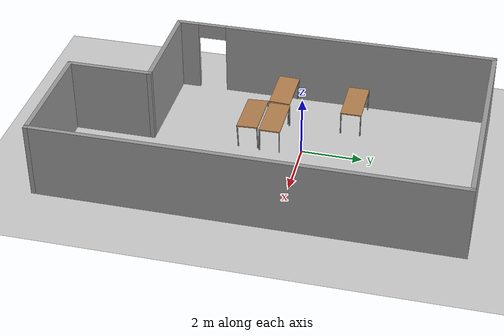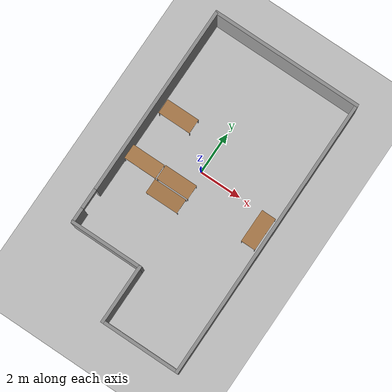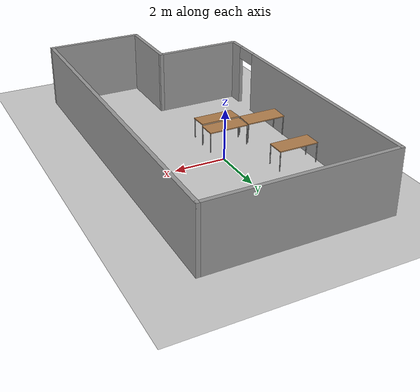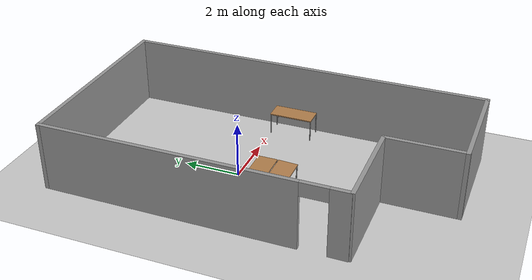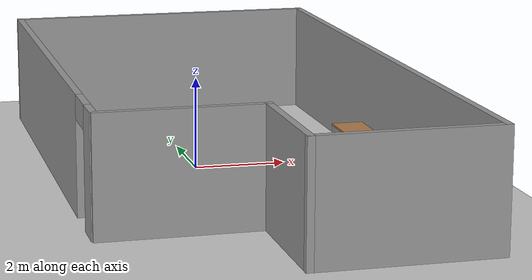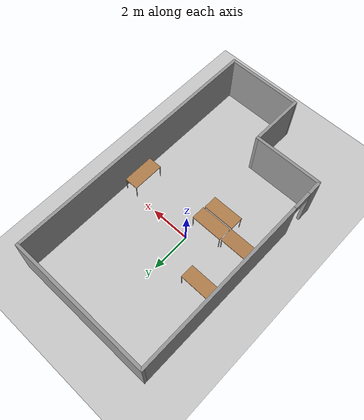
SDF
<sdf version="1.6">
 <world name="Clf Furnished">
  <model name="ground_plane">
   <static>1</static>
   <link name="link">
    <collision name="collision">
     <geometry><plane><normal>0 0 1</normal><size>100 100</size></plane></geometry>
     <surface><friction><ode><mu>100</mu><mu2>50</mu2></ode></friction></surface>
    </collision>
    <visual name="visual">
     <cast_shadows>0</cast_shadows>
     <geometry><plane><normal>0 0 1</normal><size>100 100</size></plane></geometry>
     <material>
      <script><uri>file://media/materials/scripts/gazebo.material</uri><name>Gazebo/Grey</name></script>
     </material>
    </visual>
   </link>
  </model>
  <model name="CLF_0">
   <pose>0.46218 -0.965731 0 0 -0 0</pose>
   <link name="Wall_0">
    <pose>-3.547 1.394 0 0 0 -1.5708</pose>
    <visual name="Wall_0_Visual_0">
     <pose>-0.827428 0 1.25 0 -0 0</pose>
     <geometry><box><size>9.14514 0.15 2.5</size></box></geometry>
     <material>
      <script><uri>file://media/materials/scripts/gazebo.material</uri><name>Gazebo/Grey</name></script>
      <ambient>1 1 1 1</ambient>
     </material>
    </visual>
    <collision name="Wall_0_Collision_0">
     <geometry><box><size>9.14514 0.15 2.5</size></box></geometry>
     <pose>-0.827428 0 1.25 0 -0 0</pose>
    </collision>
    <visual name="Wall_0_Visual_1">
     <pose>5.05257 0 1.25 0 -0 0</pose>
     <geometry><box><size>0.694856 0.15 2.5</size></box></geometry>
     <material>
      <script><uri>file://media/materials/scripts/gazebo.material</uri><name>Gazebo/Grey</name></script>
      <ambient>1 1 1 1</ambient>
     </material>
    </visual>
    <collision name="Wall_0_Collision_1">
     <geometry><box><size>0.694856 0.15 2.5</size></box></geometry>
     <pose>5.05257 0 1.25 0 -0 0</pose>
    </collision>
    <visual name="Wall_0_Visual_2">
     <pose>4.22514 0 2.25 0 -0 0</pose>
     <geometry><box><size>0.96 0.15 0.5</size></box></geometry>
     <material>
      <script><uri>file://media/materials/scripts/gazebo.material</uri><name>Gazebo/Grey</name></script>
      <ambient>1 1 1 1</ambient>
     </material>
    </visual>
    <collision name="Wall_0_Collision_2">
     <geometry><box><size>0.96 0.15 0.5</size></box></geometry>
     <pose>4.22514 0 2.25 0 -0 0</pose>
    </collision>
   </link>
   <link name="Wall_10">
    <collision name="Wall_10_Collision">
     <geometry><box><size>3.5 0.15 2.5</size></box></geometry>
     <pose>0 0 1.25 0 -0 0</pose>
    </collision>
    <visual name="Wall_10_Visual">
     <pose>0 0 1.25 0 -0 0</pose>
     <geometry><box><size>3.5 0.15 2.5</size></box></geometry>
     <material>
      <script><uri>file://media/materials/scripts/gazebo.material</uri><name>Gazebo/Grey</name></script>
      <ambient>1 1 1 1</ambient>
     </material>
    </visual>
    <pose>-1.848 -4.005 0 0 -0 3.14159</pose>
   </link>
   <link name="Wall_2">
    <collision name="Wall_2_Collision">
     <geometry><box><size>7.244 0.15 2.5</size></box></geometry>
     <pose>0 0 1.25 0 -0 0</pose>
    </collision>
    <visual name="Wall_2_Visual">
     <pose>0 0 1.25 0 -0 0</pose>
     <geometry><box><size>7.244 0.15 2.5</size></box></geometry>
     <material>
      <script><uri>file://media/materials/scripts/gazebo.material</uri><name>Gazebo/Grey</name></script>
      <ambient>1 1 1 1</ambient>
     </material>
    </visual>
    <pose>0 6.719 0 0 -0 0</pose>
   </link>
   <link name="Wall_4">
    <collision name="Wall_4_Collision">
     <geometry><box><size>13.588 0.15 2.5</size></box></geometry>
     <pose>0 0 1.25 0 -0 0</pose>
    </collision>
    <visual name="Wall_4_Visual">
     <pose>0 0 1.25 0 -0 0</pose>
     <geometry><box><size>13.588 0.15 2.5</size></box></geometry>
     <material>
      <script><uri>file://media/materials/scripts/gazebo.material</uri><name>Gazebo/Grey</name></script>
      <ambient>1 1 1 1</ambient>
     </material>
    </visual>
    <pose>3.547 0 0 0 0 -1.5708</pose>
   </link>
   <link name="Wall_6">
    <collision name="Wall_6_Collision">
     <geometry><box><size>3.87 0.15 2.5</size></box></geometry>
     <pose>0 0 1.25 0 -0 0</pose>
    </collision>
    <visual name="Wall_6_Visual">
     <pose>0 0 1.25 0 -0 0</pose>
     <geometry><box><size>3.87 0.15 2.5</size></box></geometry>
     <material>
      <script><uri>file://media/materials/scripts/gazebo.material</uri><name>Gazebo/Grey</name></script>
      <ambient>1 1 1 1</ambient>
     </material>
    </visual>
    <pose>1.687 -6.719 0 0 -0 3.14159</pose>
   </link>
   <link name="Wall_8">
    <collision name="Wall_8_Collision">
     <geometry><box><size>2.864 0.15 2.5</size></box></geometry>
     <pose>0 0 1.25 0 -0 0</pose>
    </collision>
    <visual name="Wall_8_Visual">
     <pose>0 0 1.25 0 -0 0</pose>
     <geometry><box><size>2.864 0.15 2.5</size></box></geometry>
     <material>
      <script><uri>file://media/materials/scripts/gazebo.material</uri><name>Gazebo/Grey</name></script>
      <ambient>1 1 1 1</ambient>
     </material>
    </visual>
    <pose>-0.173 -5.362 0 0 -0 1.5708</pose>
   </link>
   <static>1</static>
  </model>
  <model name="table_mod_0">
   <link name="link">
    <inertial>
     <inertia><ixx>1</ixx><ixy>0</ixy><ixz>0</ixz><iyy>1</iyy><iyz>0</iyz><izz>1</izz></inertia>
     <mass>1</mass>
    </inertial>
    <visual name="visual1">
     <pose>0 0 0.8 0 -0 0</pose>
     <geometry><box><size>1.6 0.7 0.04</size></box></geometry>
     <material>
      <script><uri>file://media/materials/scripts/gazebo.material</uri><name>Gazebo/Wood</name></script>
      <ambient>1 1 1 1</ambient>
      <diffuse>1 1 1 1</diffuse>
      <specular>0.2 0.2 0.2 1</specular>
      <emissive>0 0 0 1</emissive>
     </material>
    </visual>
    <visual name="front_right_leg">
     <pose>0.78 -0.33 0.4 0 -0 0</pose>
     <geometry><cylinder><radius>0.02</radius><length>0.8</length></cylinder></geometry>
     <material>
      <script><uri>file://media/materials/scripts/gazebo.material</uri><name>Gazebo/Grey</name></script>
      <ambient>0.3 0.3 0.3 1</ambient>
      <diffuse>0.7 0.7 0.7 1</diffuse>
      <specular>0.01 0.01 0.01 1</specular>
      <emissive>0 0 0 1</emissive>
     </material>
    </visual>
    <visual name="front_left_leg">
     <pose>0.78 0.33 0.4 0 -0 0</pose>
     <geometry><cylinder><radius>0.02</radius><length>0.8</length></cylinder></geometry>
     <material>
      <script><uri>file://media/materials/scripts/gazebo.material</uri><name>Gazebo/Grey</name></script>
      <ambient>0.3 0.3 0.3 1</ambient>
      <diffuse>0.7 0.7 0.7 1</diffuse>
      <specular>0.01 0.01 0.01 1</specular>
      <emissive>0 0 0 1</emissive>
     </material>
    </visual>
    <visual name="back_left_leg">
     <pose>-0.78 0.33 0.4 0 -0 0</pose>
     <geometry><cylinder><radius>0.02</radius><length>0.8</length></cylinder></geometry>
     <material>
      <script><uri>file://media/materials/scripts/gazebo.material</uri><name>Gazebo/Grey</name></script>
      <ambient>0.3 0.3 0.3 1</ambient>
      <diffuse>0.7 0.7 0.7 1</diffuse>
      <specular>0.01 0.01 0.01 1</specular>
      <emissive>0 0 0 1</emissive>
     </material>
    </visual>
    <visual name="back_right_leg">
     <pose>-0.78 -0.33 0.4 0 -0 0</pose>
     <geometry><cylinder><radius>0.02</radius><length>0.8</length></cylinder></geometry>
     <material>
      <script><uri>file://media/materials/scripts/gazebo.material</uri><name>Gazebo/Grey</name></script>
      <ambient>0.3 0.3 0.3 1</ambient>
      <diffuse>0.7 0.7 0.7 1</diffuse>
      <specular>0.01 0.01 0.01 1</specular>
      <emissive>0 0 0 1</emissive>
     </material>
    </visual>
    <collision name="surface">
     <pose>0 0 0.8 0 -0 0</pose>
     <geometry><box><size>1.6 0.7 0.03</size></box></geometry>
     <surface>
      <friction>
       <ode><mu>0.6</mu><mu2>0.6</mu2><fdir1>0 0 0</fdir1><slip1>0</slip1><slip2>0</slip2></ode>
       <torsional>
        <coefficient>1</coefficient>
        <patch_radius>0</patch_radius>
        <surface_radius>0</surface_radius>
        <use_patch_radius>1</use_patch_radius>
        <ode><slip>0</slip></ode>
       </torsional>
      </friction>
      <bounce><restitution_coefficient>0</restitution_coefficient><threshold>1e+06</threshold></bounce>
      <contact>
       <collide_without_contact>0</collide_without_contact>
       <collide_without_contact_bitmask>1</collide_without_contact_bitmask>
       <collide_bitmask>1</collide_bitmask>
       <ode>
        <soft_cfm>0</soft_cfm>
        <soft_erp>0.2</soft_erp>
        <kp>1e+13</kp>
        <kd>1</kd>
        <max_vel>0.01</max_vel>
        <min_depth>0</min_depth>
       </ode>
       <bullet>
        <split_impulse>1</split_impulse>
        <split_impulse_penetration_threshold>-0.01</split_impulse_penetration_threshold>
        <soft_cfm>0</soft_cfm>
        <soft_erp>0.2</soft_erp>
        <kp>1e+13</kp>
        <kd>1</kd>
       </bullet>
      </contact>
     </surface>
    </collision>
    <collision name="front_left_leg">
     <pose>0.78 0.33 0.4 0 -0 0</pose>
     <geometry><cylinder><radius>0.02</radius><length>0.8</length></cylinder></geometry>
     <surface>
      <friction>
       <ode><mu>1</mu><mu2>1</mu2><fdir1>0 0 0</fdir1><slip1>0</slip1><slip2>0</slip2></ode>
       <torsional>
        <coefficient>1</coefficient>
        <patch_radius>0</patch_radius>
        <surface_radius>0</surface_radius>
        <use_patch_radius>1</use_patch_radius>
        <ode><slip>0</slip></ode>
       </torsional>
      </friction>
      <bounce><restitution_coefficient>0</restitution_coefficient><threshold>1e+06</threshold></bounce>
      <contact>
       <collide_without_contact>0</collide_without_contact>
       <collide_without_contact_bitmask>1</collide_without_contact_bitmask>
       <collide_bitmask>1</collide_bitmask>
       <ode>
        <soft_cfm>0</soft_cfm>
        <soft_erp>0.2</soft_erp>
        <kp>1e+13</kp>
        <kd>1</kd>
        <max_vel>0.01</max_vel>
        <min_depth>0</min_depth>
       </ode>
       <bullet>
        <split_impulse>1</split_impulse>
        <split_impulse_penetration_threshold>-0.01</split_impulse_penetration_threshold>
        <soft_cfm>0</soft_cfm>
        <soft_erp>0.2</soft_erp>
        <kp>1e+13</kp>
        <kd>1</kd>
       </bullet>
      </contact>
     </surface>
    </collision>
    <collision name="front_right_leg">
     <pose>0.78 -0.33 0.4 0 -0 0</pose>
     <geometry><cylinder><radius>0.02</radius><length>0.8</length></cylinder></geometry>
     <surface>
      <friction>
       <ode><mu>1</mu><mu2>1</mu2><fdir1>0 0 0</fdir1><slip1>0</slip1><slip2>0</slip2></ode>
       <torsional>
        <coefficient>1</coefficient>
        <patch_radius>0</patch_radius>
        <surface_radius>0</surface_radius>
        <use_patch_radius>1</use_patch_radius>
        <ode><slip>0</slip></ode>
       </torsional>
      </friction>
      <bounce><restitution_coefficient>0</restitution_coefficient><threshold>1e+06</threshold></bounce>
      <contact>
       <collide_without_contact>0</collide_without_contact>
       <collide_without_contact_bitmask>1</collide_without_contact_bitmask>
       <collide_bitmask>1</collide_bitmask>
       <ode>
        <soft_cfm>0</soft_cfm>
        <soft_erp>0.2</soft_erp>
        <kp>1e+13</kp>
        <kd>1</kd>
        <max_vel>0.01</max_vel>
        <min_depth>0</min_depth>
       </ode>
       <bullet>
        <split_impulse>1</split_impulse>
        <split_impulse_penetration_threshold>-0.01</split_impulse_penetration_threshold>
        <soft_cfm>0</soft_cfm>
        <soft_erp>0.2</soft_erp>
        <kp>1e+13</kp>
        <kd>1</kd>
       </bullet>
      </contact>
     </surface>
    </collision>
    <collision name="back_right_leg">
     <pose>-0.78 -0.33 0.4 0 -0 0</pose>
     <geometry><cylinder><radius>0.02</radius><length>0.8</length></cylinder></geometry>
     <surface>
      <friction>
       <ode><mu>1</mu><mu2>1</mu2><fdir1>0 0 0</fdir1><slip1>0</slip1><slip2>0</slip2></ode>
       <torsional>
        <coefficient>1</coefficient>
        <patch_radius>0</patch_radius>
        <surface_radius>0</surface_radius>
        <use_patch_radius>1</use_patch_radius>
        <ode><slip>0</slip></ode>
       </torsional>
      </friction>
      <bounce><restitution_coefficient>0</restitution_coefficient><threshold>1e+06</threshold></bounce>
      <contact>
       <collide_without_contact>0</collide_without_contact>
       <collide_without_contact_bitmask>1</collide_without_contact_bitmask>
       <collide_bitmask>1</collide_bitmask>
       <ode>
        <soft_cfm>0</soft_cfm>
        <soft_erp>0.2</soft_erp>
        <kp>1e+13</kp>
        <kd>1</kd>
        <max_vel>0.01</max_vel>
        <min_depth>0</min_depth>
       </ode>
       <bullet>
        <split_impulse>1</split_impulse>
        <split_impulse_penetration_threshold>-0.01</split_impulse_penetration_threshold>
        <soft_cfm>0</soft_cfm>
        <soft_erp>0.2</soft_erp>
        <kp>1e+13</kp>
        <kd>1</kd>
       </bullet>
      </contact>
     </surface>
    </collision>
    <collision name="back_left_leg">
     <pose>-0.78 0.33 0.4 0 -0 0</pose>
     <geometry><cylinder><radius>0.02</radius><length>0.8</length></cylinder></geometry>
     <surface>
      <friction>
       <ode><mu>1</mu><mu2>1</mu2><fdir1>0 0 0</fdir1><slip1>0</slip1><slip2>0</slip2></ode>
       <torsional>
        <coefficient>1</coefficient>
        <patch_radius>0</patch_radius>
        <surface_radius>0</surface_radius>
        <use_patch_radius>1</use_patch_radius>
        <ode><slip>0</slip></ode>
       </torsional>
      </friction>
      <bounce><restitution_coefficient>0</restitution_coefficient><threshold>1e+06</threshold></bounce>
      <contact>
       <collide_without_contact>0</collide_without_contact>
       <collide_without_contact_bitmask>1</collide_without_contact_bitmask>
       <collide_bitmask>1</collide_bitmask>
       <ode>
        <soft_cfm>0</soft_cfm>
        <soft_erp>0.2</soft_erp>
        <kp>1e+13</kp>
        <kd>1</kd>
        <max_vel>0.01</max_vel>
        <min_depth>0</min_depth>
       </ode>
       <bullet>
        <split_impulse>1</split_impulse>
        <split_impulse_penetration_threshold>-0.01</split_impulse_penetration_threshold>
        <soft_cfm>0</soft_cfm>
        <soft_erp>0.2</soft_erp>
        <kp>1e+13</kp>
        <kd>1</kd>
       </bullet>
      </contact>
     </surface>
    </collision>
   </link>
   <static>0</static>
   <pose>-0.609391 -1.75257 0.015325 0.043779 2.2e-05 0.001206</pose>
  </model>
  <model name="table_mod_clone">
   <link name="link">
    <inertial>
     <inertia><ixx>1</ixx><ixy>0</ixy><ixz>0</ixz><iyy>1</iyy><iyz>0</iyz><izz>1</izz></inertia>
     <mass>1</mass>
    </inertial>
    <visual name="visual1">
     <pose>0 0 0.8 0 -0 0</pose>
     <geometry><box><size>1.6 0.7 0.04</size></box></geometry>
     <material>
      <script><uri>file://media/materials/scripts/gazebo.material</uri><name>Gazebo/Wood</name></script>
      <ambient>1 1 1 1</ambient>
      <diffuse>1 1 1 1</diffuse>
      <specular>0.2 0.2 0.2 1</specular>
      <emissive>0 0 0 1</emissive>
     </material>
    </visual>
    <visual name="front_right_leg">
     <pose>0.78 -0.33 0.4 0 -0 0</pose>
     <geometry><cylinder><radius>0.02</radius><length>0.8</length></cylinder></geometry>
     <material>
      <script><uri>file://media/materials/scripts/gazebo.material</uri><name>Gazebo/Grey</name></script>
      <ambient>0.3 0.3 0.3 1</ambient>
      <diffuse>0.7 0.7 0.7 1</diffuse>
      <specular>0.01 0.01 0.01 1</specular>
      <emissive>0 0 0 1</emissive>
     </material>
    </visual>
    <visual name="front_left_leg">
     <pose>0.78 0.33 0.4 0 -0 0</pose>
     <geometry><cylinder><radius>0.02</radius><length>0.8</length></cylinder></geometry>
     <material>
      <script><uri>file://media/materials/scripts/gazebo.material</uri><name>Gazebo/Grey</name></script>
      <ambient>0.3 0.3 0.3 1</ambient>
      <diffuse>0.7 0.7 0.7 1</diffuse>
      <specular>0.01 0.01 0.01 1</specular>
      <emissive>0 0 0 1</emissive>
     </material>
    </visual>
    <visual name="back_left_leg">
     <pose>-0.78 0.33 0.4 0 -0 0</pose>
     <geometry><cylinder><radius>0.02</radius><length>0.8</length></cylinder></geometry>
     <material>
      <script><uri>file://media/materials/scripts/gazebo.material</uri><name>Gazebo/Grey</name></script>
      <ambient>0.3 0.3 0.3 1</ambient>
      <diffuse>0.7 0.7 0.7 1</diffuse>
      <specular>0.01 0.01 0.01 1</specular>
      <emissive>0 0 0 1</emissive>
     </material>
    </visual>
    <visual name="back_right_leg">
     <pose>-0.78 -0.33 0.4 0 -0 0</pose>
     <geometry><cylinder><radius>0.02</radius><length>0.8</length></cylinder></geometry>
     <material>
      <script><uri>file://media/materials/scripts/gazebo.material</uri><name>Gazebo/Grey</name></script>
      <ambient>0.3 0.3 0.3 1</ambient>
      <diffuse>0.7 0.7 0.7 1</diffuse>
      <specular>0.01 0.01 0.01 1</specular>
      <emissive>0 0 0 1</emissive>
     </material>
    </visual>
    <collision name="surface">
     <pose>0 0 0.8 0 -0 0</pose>
     <geometry><box><size>1.6 0.7 0.03</size></box></geometry>
     <surface>
      <friction>
       <ode><mu>0.6</mu><mu2>0.6</mu2><fdir1>0 0 0</fdir1><slip1>0</slip1><slip2>0</slip2></ode>
       <torsional>
        <coefficient>1</coefficient>
        <patch_radius>0</patch_radius>
        <surface_radius>0</surface_radius>
        <use_patch_radius>1</use_patch_radius>
        <ode><slip>0</slip></ode>
       </torsional>
      </friction>
      <bounce><restitution_coefficient>0</restitution_coefficient><threshold>1e+06</threshold></bounce>
      <contact>
       <collide_without_contact>0</collide_without_contact>
       <collide_without_contact_bitmask>1</collide_without_contact_bitmask>
       <collide_bitmask>1</collide_bitmask>
       <ode>
        <soft_cfm>0</soft_cfm>
        <soft_erp>0.2</soft_erp>
        <kp>1e+13</kp>
        <kd>1</kd>
        <max_vel>0.01</max_vel>
        <min_depth>0</min_depth>
       </ode>
       <bullet>
        <split_impulse>1</split_impulse>
        <split_impulse_penetration_threshold>-0.01</split_impulse_penetration_threshold>
        <soft_cfm>0</soft_cfm>
        <soft_erp>0.2</soft_erp>
        <kp>1e+13</kp>
        <kd>1</kd>
       </bullet>
      </contact>
     </surface>
    </collision>
    <collision name="front_left_leg">
     <pose>0.78 0.33 0.4 0 -0 0</pose>
     <geometry><cylinder><radius>0.02</radius><length>0.8</length></cylinder></geometry>
     <surface>
      <friction>
       <ode><mu>1</mu><mu2>1</mu2><fdir1>0 0 0</fdir1><slip1>0</slip1><slip2>0</slip2></ode>
       <torsional>
        <coefficient>1</coefficient>
        <patch_radius>0</patch_radius>
        <surface_radius>0</surface_radius>
        <use_patch_radius>1</use_patch_radius>
        <ode><slip>0</slip></ode>
       </torsional>
      </friction>
      <bounce><restitution_coefficient>0</restitution_coefficient><threshold>1e+06</threshold></bounce>
      <contact>
       <collide_without_contact>0</collide_without_contact>
       <collide_without_contact_bitmask>1</collide_without_contact_bitmask>
       <collide_bitmask>1</collide_bitmask>
       <ode>
        <soft_cfm>0</soft_cfm>
        <soft_erp>0.2</soft_erp>
        <kp>1e+13</kp>
        <kd>1</kd>
        <max_vel>0.01</max_vel>
        <min_depth>0</min_depth>
       </ode>
       <bullet>
        <split_impulse>1</split_impulse>
        <split_impulse_penetration_threshold>-0.01</split_impulse_penetration_threshold>
        <soft_cfm>0</soft_cfm>
        <soft_erp>0.2</soft_erp>
        <kp>1e+13</kp>
        <kd>1</kd>
       </bullet>
      </contact>
     </surface>
    </collision>
    <collision name="front_right_leg">
     <pose>0.78 -0.33 0.4 0 -0 0</pose>
     <geometry><cylinder><radius>0.02</radius><length>0.8</length></cylinder></geometry>
     <surface>
      <friction>
       <ode><mu>1</mu><mu2>1</mu2><fdir1>0 0 0</fdir1><slip1>0</slip1><slip2>0</slip2></ode>
       <torsional>
        <coefficient>1</coefficient>
        <patch_radius>0</patch_radius>
        <surface_radius>0</surface_radius>
        <use_patch_radius>1</use_patch_radius>
        <ode><slip>0</slip></ode>
       </torsional>
      </friction>
      <bounce><restitution_coefficient>0</restitution_coefficient><threshold>1e+06</threshold></bounce>
      <contact>
       <collide_without_contact>0</collide_without_contact>
       <collide_without_contact_bitmask>1</collide_without_contact_bitmask>
       <collide_bitmask>1</collide_bitmask>
       <ode>
        <soft_cfm>0</soft_cfm>
        <soft_erp>0.2</soft_erp>
        <kp>1e+13</kp>
        <kd>1</kd>
        <max_vel>0.01</max_vel>
        <min_depth>0</min_depth>
       </ode>
       <bullet>
        <split_impulse>1</split_impulse>
        <split_impulse_penetration_threshold>-0.01</split_impulse_penetration_threshold>
        <soft_cfm>0</soft_cfm>
        <soft_erp>0.2</soft_erp>
        <kp>1e+13</kp>
        <kd>1</kd>
       </bullet>
      </contact>
     </surface>
    </collision>
    <collision name="back_right_leg">
     <pose>-0.78 -0.33 0.4 0 -0 0</pose>
     <geometry><cylinder><radius>0.02</radius><length>0.8</length></cylinder></geometry>
     <surface>
      <friction>
       <ode><mu>1</mu><mu2>1</mu2><fdir1>0 0 0</fdir1><slip1>0</slip1><slip2>0</slip2></ode>
       <torsional>
        <coefficient>1</coefficient>
        <patch_radius>0</patch_radius>
        <surface_radius>0</surface_radius>
        <use_patch_radius>1</use_patch_radius>
        <ode><slip>0</slip></ode>
       </torsional>
      </friction>
      <bounce><restitution_coefficient>0</restitution_coefficient><threshold>1e+06</threshold></bounce>
      <contact>
       <collide_without_contact>0</collide_without_contact>
       <collide_without_contact_bitmask>1</collide_without_contact_bitmask>
       <collide_bitmask>1</collide_bitmask>
       <ode>
        <soft_cfm>0</soft_cfm>
        <soft_erp>0.2</soft_erp>
        <kp>1e+13</kp>
        <kd>1</kd>
        <max_vel>0.01</max_vel>
        <min_depth>0</min_depth>
       </ode>
       <bullet>
        <split_impulse>1</split_impulse>
        <split_impulse_penetration_threshold>-0.01</split_impulse_penetration_threshold>
        <soft_cfm>0</soft_cfm>
        <soft_erp>0.2</soft_erp>
        <kp>1e+13</kp>
        <kd>1</kd>
       </bullet>
      </contact>
     </surface>
    </collision>
    <collision name="back_left_leg">
     <pose>-0.78 0.33 0.4 0 -0 0</pose>
     <geometry><cylinder><radius>0.02</radius><length>0.8</length></cylinder></geometry>
     <surface>
      <friction>
       <ode><mu>1</mu><mu2>1</mu2><fdir1>0 0 0</fdir1><slip1>0</slip1><slip2>0</slip2></ode>
       <torsional>
        <coefficient>1</coefficient>
        <patch_radius>0</patch_radius>
        <surface_radius>0</surface_radius>
        <use_patch_radius>1</use_patch_radius>
        <ode><slip>0</slip></ode>
       </torsional>
      </friction>
      <bounce><restitution_coefficient>0</restitution_coefficient><threshold>1e+06</threshold></bounce>
      <contact>
       <collide_without_contact>0</collide_without_contact>
       <collide_without_contact_bitmask>1</collide_without_contact_bitmask>
       <collide_bitmask>1</collide_bitmask>
       <ode>
        <soft_cfm>0</soft_cfm>
        <soft_erp>0.2</soft_erp>
        <kp>1e+13</kp>
        <kd>1</kd>
        <max_vel>0.01</max_vel>
        <min_depth>0</min_depth>
       </ode>
       <bullet>
        <split_impulse>1</split_impulse>
        <split_impulse_penetration_threshold>-0.01</split_impulse_penetration_threshold>
        <soft_cfm>0</soft_cfm>
        <soft_erp>0.2</soft_erp>
        <kp>1e+13</kp>
        <kd>1</kd>
       </bullet>
      </contact>
     </surface>
    </collision>
   </link>
   <static>0</static>
   <pose>-2.20983 -1.10049 0.015295 -0.043718 -0 -3e-06</pose>
  </model>
  <model name="table_mod_clone_0">
   <link name="link">
    <inertial>
     <inertia><ixx>1</ixx><ixy>0</ixy><ixz>0</ixz><iyy>1</iyy><iyz>0</iyz><izz>1</izz></inertia>
     <mass>1</mass>
    </inertial>
    <visual name="visual1">
     <pose>0 0 0.8 0 -0 0</pose>
     <geometry><box><size>1.6 0.7 0.04</size></box></geometry>
     <material>
      <script><uri>file://media/materials/scripts/gazebo.material</uri><name>Gazebo/Wood</name></script>
      <ambient>1 1 1 1</ambient>
      <diffuse>1 1 1 1</diffuse>
      <specular>0.2 0.2 0.2 1</specular>
      <emissive>0 0 0 1</emissive>
     </material>
    </visual>
    <visual name="front_right_leg">
     <pose>0.78 -0.33 0.4 0 -0 0</pose>
     <geometry><cylinder><radius>0.02</radius><length>0.8</length></cylinder></geometry>
     <material>
      <script><uri>file://media/materials/scripts/gazebo.material</uri><name>Gazebo/Grey</name></script>
      <ambient>0.3 0.3 0.3 1</ambient>
      <diffuse>0.7 0.7 0.7 1</diffuse>
      <specular>0.01 0.01 0.01 1</specular>
      <emissive>0 0 0 1</emissive>
     </material>
    </visual>
    <visual name="front_left_leg">
     <pose>0.78 0.33 0.4 0 -0 0</pose>
     <geometry><cylinder><radius>0.02</radius><length>0.8</length></cylinder></geometry>
     <material>
      <script><uri>file://media/materials/scripts/gazebo.material</uri><name>Gazebo/Grey</name></script>
      <ambient>0.3 0.3 0.3 1</ambient>
      <diffuse>0.7 0.7 0.7 1</diffuse>
      <specular>0.01 0.01 0.01 1</specular>
      <emissive>0 0 0 1</emissive>
     </material>
    </visual>
    <visual name="back_left_leg">
     <pose>-0.78 0.33 0.4 0 -0 0</pose>
     <geometry><cylinder><radius>0.02</radius><length>0.8</length></cylinder></geometry>
     <material>
      <script><uri>file://media/materials/scripts/gazebo.material</uri><name>Gazebo/Grey</name></script>
      <ambient>0.3 0.3 0.3 1</ambient>
      <diffuse>0.7 0.7 0.7 1</diffuse>
      <specular>0.01 0.01 0.01 1</specular>
      <emissive>0 0 0 1</emissive>
     </material>
    </visual>
    <visual name="back_right_leg">
     <pose>-0.78 -0.33 0.4 0 -0 0</pose>
     <geometry><cylinder><radius>0.02</radius><length>0.8</length></cylinder></geometry>
     <material>
      <script><uri>file://media/materials/scripts/gazebo.material</uri><name>Gazebo/Grey</name></script>
      <ambient>0.3 0.3 0.3 1</ambient>
      <diffuse>0.7 0.7 0.7 1</diffuse>
      <specular>0.01 0.01 0.01 1</specular>
      <emissive>0 0 0 1</emissive>
     </material>
    </visual>
    <collision name="surface">
     <pose>0 0 0.8 0 -0 0</pose>
     <geometry><box><size>1.6 0.7 0.03</size></box></geometry>
     <surface>
      <friction>
       <ode><mu>0.6</mu><mu2>0.6</mu2><fdir1>0 0 0</fdir1><slip1>0</slip1><slip2>0</slip2></ode>
       <torsional>
        <coefficient>1</coefficient>
        <patch_radius>0</patch_radius>
        <surface_radius>0</surface_radius>
        <use_patch_radius>1</use_patch_radius>
        <ode><slip>0</slip></ode>
       </torsional>
      </friction>
      <bounce><restitution_coefficient>0</restitution_coefficient><threshold>1e+06</threshold></bounce>
      <contact>
       <collide_without_contact>0</collide_without_contact>
       <collide_without_contact_bitmask>1</collide_without_contact_bitmask>
       <collide_bitmask>1</collide_bitmask>
       <ode>
        <soft_cfm>0</soft_cfm>
        <soft_erp>0.2</soft_erp>
        <kp>1e+13</kp>
        <kd>1</kd>
        <max_vel>0.01</max_vel>
        <min_depth>0</min_depth>
       </ode>
       <bullet>
        <split_impulse>1</split_impulse>
        <split_impulse_penetration_threshold>-0.01</split_impulse_penetration_threshold>
        <soft_cfm>0</soft_cfm>
        <soft_erp>0.2</soft_erp>
        <kp>1e+13</kp>
        <kd>1</kd>
       </bullet>
      </contact>
     </surface>
    </collision>
    <collision name="front_left_leg">
     <pose>0.78 0.33 0.4 0 -0 0</pose>
     <geometry><cylinder><radius>0.02</radius><length>0.8</length></cylinder></geometry>
     <surface>
      <friction>
       <ode><mu>1</mu><mu2>1</mu2><fdir1>0 0 0</fdir1><slip1>0</slip1><slip2>0</slip2></ode>
       <torsional>
        <coefficient>1</coefficient>
        <patch_radius>0</patch_radius>
        <surface_radius>0</surface_radius>
        <use_patch_radius>1</use_patch_radius>
        <ode><slip>0</slip></ode>
       </torsional>
      </friction>
      <bounce><restitution_coefficient>0</restitution_coefficient><threshold>1e+06</threshold></bounce>
      <contact>
       <collide_without_contact>0</collide_without_contact>
       <collide_without_contact_bitmask>1</collide_without_contact_bitmask>
       <collide_bitmask>1</collide_bitmask>
       <ode>
        <soft_cfm>0</soft_cfm>
        <soft_erp>0.2</soft_erp>
        <kp>1e+13</kp>
        <kd>1</kd>
        <max_vel>0.01</max_vel>
        <min_depth>0</min_depth>
       </ode>
       <bullet>
        <split_impulse>1</split_impulse>
        <split_impulse_penetration_threshold>-0.01</split_impulse_penetration_threshold>
        <soft_cfm>0</soft_cfm>
        <soft_erp>0.2</soft_erp>
        <kp>1e+13</kp>
        <kd>1</kd>
       </bullet>
      </contact>
     </surface>
    </collision>
    <collision name="front_right_leg">
     <pose>0.78 -0.33 0.4 0 -0 0</pose>
     <geometry><cylinder><radius>0.02</radius><length>0.8</length></cylinder></geometry>
     <surface>
      <friction>
       <ode><mu>1</mu><mu2>1</mu2><fdir1>0 0 0</fdir1><slip1>0</slip1><slip2>0</slip2></ode>
       <torsional>
        <coefficient>1</coefficient>
        <patch_radius>0</patch_radius>
        <surface_radius>0</surface_radius>
        <use_patch_radius>1</use_patch_radius>
        <ode><slip>0</slip></ode>
       </torsional>
      </friction>
      <bounce><restitution_coefficient>0</restitution_coefficient><threshold>1e+06</threshold></bounce>
      <contact>
       <collide_without_contact>0</collide_without_contact>
       <collide_without_contact_bitmask>1</collide_without_contact_bitmask>
       <collide_bitmask>1</collide_bitmask>
       <ode>
        <soft_cfm>0</soft_cfm>
        <soft_erp>0.2</soft_erp>
        <kp>1e+13</kp>
        <kd>1</kd>
        <max_vel>0.01</max_vel>
        <min_depth>0</min_depth>
       </ode>
       <bullet>
        <split_impulse>1</split_impulse>
        <split_impulse_penetration_threshold>-0.01</split_impulse_penetration_threshold>
        <soft_cfm>0</soft_cfm>
        <soft_erp>0.2</soft_erp>
        <kp>1e+13</kp>
        <kd>1</kd>
       </bullet>
      </contact>
     </surface>
    </collision>
    <collision name="back_right_leg">
     <pose>-0.78 -0.33 0.4 0 -0 0</pose>
     <geometry><cylinder><radius>0.02</radius><length>0.8</length></cylinder></geometry>
     <surface>
      <friction>
       <ode><mu>1</mu><mu2>1</mu2><fdir1>0 0 0</fdir1><slip1>0</slip1><slip2>0</slip2></ode>
       <torsional>
        <coefficient>1</coefficient>
        <patch_radius>0</patch_radius>
        <surface_radius>0</surface_radius>
        <use_patch_radius>1</use_patch_radius>
        <ode><slip>0</slip></ode>
       </torsional>
      </friction>
      <bounce><restitution_coefficient>0</restitution_coefficient><threshold>1e+06</threshold></bounce>
      <contact>
       <collide_without_contact>0</collide_without_contact>
       <collide_without_contact_bitmask>1</collide_without_contact_bitmask>
       <collide_bitmask>1</collide_bitmask>
       <ode>
        <soft_cfm>0</soft_cfm>
        <soft_erp>0.2</soft_erp>
        <kp>1e+13</kp>
        <kd>1</kd>
        <max_vel>0.01</max_vel>
        <min_depth>0</min_depth>
       </ode>
       <bullet>
        <split_impulse>1</split_impulse>
        <split_impulse_penetration_threshold>-0.01</split_impulse_penetration_threshold>
        <soft_cfm>0</soft_cfm>
        <soft_erp>0.2</soft_erp>
        <kp>1e+13</kp>
        <kd>1</kd>
       </bullet>
      </contact>
     </surface>
    </collision>
    <collision name="back_left_leg">
     <pose>-0.78 0.33 0.4 0 -0 0</pose>
     <geometry><cylinder><radius>0.02</radius><length>0.8</length></cylinder></geometry>
     <surface>
      <friction>
       <ode><mu>1</mu><mu2>1</mu2><fdir1>0 0 0</fdir1><slip1>0</slip1><slip2>0</slip2></ode>
       <torsional>
        <coefficient>1</coefficient>
        <patch_radius>0</patch_radius>
        <surface_radius>0</surface_radius>
        <use_patch_radius>1</use_patch_radius>
        <ode><slip>0</slip></ode>
       </torsional>
      </friction>
      <bounce><restitution_coefficient>0</restitution_coefficient><threshold>1e+06</threshold></bounce>
      <contact>
       <collide_without_contact>0</collide_without_contact>
       <collide_without_contact_bitmask>1</collide_without_contact_bitmask>
       <collide_bitmask>1</collide_bitmask>
       <ode>
        <soft_cfm>0</soft_cfm>
        <soft_erp>0.2</soft_erp>
        <kp>1e+13</kp>
        <kd>1</kd>
        <max_vel>0.01</max_vel>
        <min_depth>0</min_depth>
       </ode>
       <bullet>
        <split_impulse>1</split_impulse>
        <split_impulse_penetration_threshold>-0.01</split_impulse_penetration_threshold>
        <soft_cfm>0</soft_cfm>
        <soft_erp>0.2</soft_erp>
        <kp>1e+13</kp>
        <kd>1</kd>
       </bullet>
      </contact>
     </surface>
    </collision>
   </link>
   <static>0</static>
   <pose>-0.564494 -1.03214 0 0 -0 0.002157</pose>
  </model>
  <model name="table_mod_1">
   <link name="link">
    <inertial>
     <inertia><ixx>1</ixx><ixy>0</ixy><ixz>0</ixz><iyy>1</iyy><iyz>0</iyz><izz>1</izz></inertia>
     <mass>1</mass>
    </inertial>
    <visual name="visual1">
     <pose>0 0 0.8 0 -0 0</pose>
     <geometry><box><size>1.6 0.7 0.04</size></box></geometry>
     <material>
      <script><uri>file://media/materials/scripts/gazebo.material</uri><name>Gazebo/Wood</name></script>
      <ambient>1 1 1 1</ambient>
      <diffuse>1 1 1 1</diffuse>
      <specular>0.2 0.2 0.2 1</specular>
      <emissive>0 0 0 1</emissive>
     </material>
    </visual>
    <visual name="front_right_leg">
     <pose>0.78 -0.33 0.4 0 -0 0</pose>
     <geometry><cylinder><radius>0.02</radius><length>0.8</length></cylinder></geometry>
     <material>
      <script><uri>file://media/materials/scripts/gazebo.material</uri><name>Gazebo/Grey</name></script>
      <ambient>0.3 0.3 0.3 1</ambient>
      <diffuse>0.7 0.7 0.7 1</diffuse>
      <specular>0.01 0.01 0.01 1</specular>
      <emissive>0 0 0 1</emissive>
     </material>
    </visual>
    <visual name="front_left_leg">
     <pose>0.78 0.33 0.4 0 -0 0</pose>
     <geometry><cylinder><radius>0.02</radius><length>0.8</length></cylinder></geometry>
     <material>
      <script><uri>file://media/materials/scripts/gazebo.material</uri><name>Gazebo/Grey</name></script>
      <ambient>0.3 0.3 0.3 1</ambient>
      <diffuse>0.7 0.7 0.7 1</diffuse>
      <specular>0.01 0.01 0.01 1</specular>
      <emissive>0 0 0 1</emissive>
     </material>
    </visual>
    <visual name="back_left_leg">
     <pose>-0.78 0.33 0.4 0 -0 0</pose>
     <geometry><cylinder><radius>0.02</radius><length>0.8</length></cylinder></geometry>
     <material>
      <script><uri>file://media/materials/scripts/gazebo.material</uri><name>Gazebo/Grey</name></script>
      <ambient>0.3 0.3 0.3 1</ambient>
      <diffuse>0.7 0.7 0.7 1</diffuse>
      <specular>0.01 0.01 0.01 1</specular>
      <emissive>0 0 0 1</emissive>
     </material>
    </visual>
    <visual name="back_right_leg">
     <pose>-0.78 -0.33 0.4 0 -0 0</pose>
     <geometry><cylinder><radius>0.02</radius><length>0.8</length></cylinder></geometry>
     <material>
      <script><uri>file://media/materials/scripts/gazebo.material</uri><name>Gazebo/Grey</name></script>
      <ambient>0.3 0.3 0.3 1</ambient>
      <diffuse>0.7 0.7 0.7 1</diffuse>
      <specular>0.01 0.01 0.01 1</specular>
      <emissive>0 0 0 1</emissive>
     </material>
    </visual>
    <collision name="surface">
     <pose>0 0 0.8 0 -0 0</pose>
     <geometry><box><size>1.6 0.7 0.03</size></box></geometry>
     <surface>
      <friction>
       <ode><mu>0.6</mu><mu2>0.6</mu2><fdir1>0 0 0</fdir1><slip1>0</slip1><slip2>0</slip2></ode>
       <torsional>
        <coefficient>1</coefficient>
        <patch_radius>0</patch_radius>
        <surface_radius>0</surface_radius>
        <use_patch_radius>1</use_patch_radius>
        <ode><slip>0</slip></ode>
       </torsional>
      </friction>
      <bounce><restitution_coefficient>0</restitution_coefficient><threshold>1e+06</threshold></bounce>
      <contact>
       <collide_without_contact>0</collide_without_contact>
       <collide_without_contact_bitmask>1</collide_without_contact_bitmask>
       <collide_bitmask>1</collide_bitmask>
       <ode>
        <soft_cfm>0</soft_cfm>
        <soft_erp>0.2</soft_erp>
        <kp>1e+13</kp>
        <kd>1</kd>
        <max_vel>0.01</max_vel>
        <min_depth>0</min_depth>
       </ode>
       <bullet>
        <split_impulse>1</split_impulse>
        <split_impulse_penetration_threshold>-0.01</split_impulse_penetration_threshold>
        <soft_cfm>0</soft_cfm>
        <soft_erp>0.2</soft_erp>
        <kp>1e+13</kp>
        <kd>1</kd>
       </bullet>
      </contact>
     </surface>
    </collision>
    <collision name="front_left_leg">
     <pose>0.78 0.33 0.4 0 -0 0</pose>
     <geometry><cylinder><radius>0.02</radius><length>0.8</length></cylinder></geometry>
     <surface>
      <friction>
       <ode><mu>1</mu><mu2>1</mu2><fdir1>0 0 0</fdir1><slip1>0</slip1><slip2>0</slip2></ode>
       <torsional>
        <coefficient>1</coefficient>
        <patch_radius>0</patch_radius>
        <surface_radius>0</surface_radius>
        <use_patch_radius>1</use_patch_radius>
        <ode><slip>0</slip></ode>
       </torsional>
      </friction>
      <bounce><restitution_coefficient>0</restitution_coefficient><threshold>1e+06</threshold></bounce>
      <contact>
       <collide_without_contact>0</collide_without_contact>
       <collide_without_contact_bitmask>1</collide_without_contact_bitmask>
       <collide_bitmask>1</collide_bitmask>
       <ode>
        <soft_cfm>0</soft_cfm>
        <soft_erp>0.2</soft_erp>
        <kp>1e+13</kp>
        <kd>1</kd>
        <max_vel>0.01</max_vel>
        <min_depth>0</min_depth>
       </ode>
       <bullet>
        <split_impulse>1</split_impulse>
        <split_impulse_penetration_threshold>-0.01</split_impulse_penetration_threshold>
        <soft_cfm>0</soft_cfm>
        <soft_erp>0.2</soft_erp>
        <kp>1e+13</kp>
        <kd>1</kd>
       </bullet>
      </contact>
     </surface>
    </collision>
    <collision name="front_right_leg">
     <pose>0.78 -0.33 0.4 0 -0 0</pose>
     <geometry><cylinder><radius>0.02</radius><length>0.8</length></cylinder></geometry>
     <surface>
      <friction>
       <ode><mu>1</mu><mu2>1</mu2><fdir1>0 0 0</fdir1><slip1>0</slip1><slip2>0</slip2></ode>
       <torsional>
        <coefficient>1</coefficient>
        <patch_radius>0</patch_radius>
        <surface_radius>0</surface_radius>
        <use_patch_radius>1</use_patch_radius>
        <ode><slip>0</slip></ode>
       </torsional>
      </friction>
      <bounce><restitution_coefficient>0</restitution_coefficient><threshold>1e+06</threshold></bounce>
      <contact>
       <collide_without_contact>0</collide_without_contact>
       <collide_without_contact_bitmask>1</collide_without_contact_bitmask>
       <collide_bitmask>1</collide_bitmask>
       <ode>
        <soft_cfm>0</soft_cfm>
        <soft_erp>0.2</soft_erp>
        <kp>1e+13</kp>
        <kd>1</kd>
        <max_vel>0.01</max_vel>
        <min_depth>0</min_depth>
       </ode>
       <bullet>
        <split_impulse>1</split_impulse>
        <split_impulse_penetration_threshold>-0.01</split_impulse_penetration_threshold>
        <soft_cfm>0</soft_cfm>
        <soft_erp>0.2</soft_erp>
        <kp>1e+13</kp>
        <kd>1</kd>
       </bullet>
      </contact>
     </surface>
    </collision>
    <collision name="back_right_leg">
     <pose>-0.78 -0.33 0.4 0 -0 0</pose>
     <geometry><cylinder><radius>0.02</radius><length>0.8</length></cylinder></geometry>
     <surface>
      <friction>
       <ode><mu>1</mu><mu2>1</mu2><fdir1>0 0 0</fdir1><slip1>0</slip1><slip2>0</slip2></ode>
       <torsional>
        <coefficient>1</coefficient>
        <patch_radius>0</patch_radius>
        <surface_radius>0</surface_radius>
        <use_patch_radius>1</use_patch_radius>
        <ode><slip>0</slip></ode>
       </torsional>
      </friction>
      <bounce><restitution_coefficient>0</restitution_coefficient><threshold>1e+06</threshold></bounce>
      <contact>
       <collide_without_contact>0</collide_without_contact>
       <collide_without_contact_bitmask>1</collide_without_contact_bitmask>
       <collide_bitmask>1</collide_bitmask>
       <ode>
        <soft_cfm>0</soft_cfm>
        <soft_erp>0.2</soft_erp>
        <kp>1e+13</kp>
        <kd>1</kd>
        <max_vel>0.01</max_vel>
        <min_depth>0</min_depth>
       </ode>
       <bullet>
        <split_impulse>1</split_impulse>
        <split_impulse_penetration_threshold>-0.01</split_impulse_penetration_threshold>
        <soft_cfm>0</soft_cfm>
        <soft_erp>0.2</soft_erp>
        <kp>1e+13</kp>
        <kd>1</kd>
       </bullet>
      </contact>
     </surface>
    </collision>
    <collision name="back_left_leg">
     <pose>-0.78 0.33 0.4 0 -0 0</pose>
     <geometry><cylinder><radius>0.02</radius><length>0.8</length></cylinder></geometry>
     <surface>
      <friction>
       <ode><mu>1</mu><mu2>1</mu2><fdir1>0 0 0</fdir1><slip1>0</slip1><slip2>0</slip2></ode>
       <torsional>
        <coefficient>1</coefficient>
        <patch_radius>0</patch_radius>
        <surface_radius>0</surface_radius>
        <use_patch_radius>1</use_patch_radius>
        <ode><slip>0</slip></ode>
       </torsional>
      </friction>
      <bounce><restitution_coefficient>0</restitution_coefficient><threshold>1e+06</threshold></bounce>
      <contact>
       <collide_without_contact>0</collide_without_contact>
       <collide_without_contact_bitmask>1</collide_without_contact_bitmask>
       <collide_bitmask>1</collide_bitmask>
       <ode>
        <soft_cfm>0</soft_cfm>
        <soft_erp>0.2</soft_erp>
        <kp>1e+13</kp>
        <kd>1</kd>
        <max_vel>0.01</max_vel>
        <min_depth>0</min_depth>
       </ode>
       <bullet>
        <split_impulse>1</split_impulse>
        <split_impulse_penetration_threshold>-0.01</split_impulse_penetration_threshold>
        <soft_cfm>0</soft_cfm>
        <soft_erp>0.2</soft_erp>
        <kp>1e+13</kp>
        <kd>1</kd>
       </bullet>
      </contact>
     </surface>
    </collision>
   </link>
   <static>0</static>
   <pose>-2.09962 1.37366 -3e-06 0 4e-06 0.000265</pose>
  </model>
  <model name="table_mod_9_clone">
   <link name="link">
    <inertial>
     <inertia><ixx>1</ixx><ixy>0</ixy><ixz>0</ixz><iyy>1</iyy><iyz>0</iyz><izz>1</izz></inertia>
     <mass>1</mass>
    </inertial>
    <visual name="visual1">
     <pose>0 0 0.8 0 -0 0</pose>
     <geometry><box><size>1.6 0.7 0.04</size></box></geometry>
     <material>
      <script><uri>file://media/materials/scripts/gazebo.material</uri><name>Gazebo/Wood</name></script>
      <ambient>1 1 1 1</ambient>
      <diffuse>1 1 1 1</diffuse>
      <specular>0.2 0.2 0.2 1</specular>
      <emissive>0 0 0 1</emissive>
     </material>
    </visual>
    <visual name="front_right_leg">
     <pose>0.78 -0.33 0.4 0 -0 0</pose>
     <geometry><cylinder><radius>0.02</radius><length>0.8</length></cylinder></geometry>
     <material>
      <script><uri>file://media/materials/scripts/gazebo.material</uri><name>Gazebo/Grey</name></script>
      <ambient>0.3 0.3 0.3 1</ambient>
      <diffuse>0.7 0.7 0.7 1</diffuse>
      <specular>0.01 0.01 0.01 1</specular>
      <emissive>0 0 0 1</emissive>
     </material>
    </visual>
    <visual name="front_left_leg">
     <pose>0.78 0.33 0.4 0 -0 0</pose>
     <geometry><cylinder><radius>0.02</radius><length>0.8</length></cylinder></geometry>
     <material>
      <script><uri>file://media/materials/scripts/gazebo.material</uri><name>Gazebo/Grey</name></script>
      <ambient>0.3 0.3 0.3 1</ambient>
      <diffuse>0.7 0.7 0.7 1</diffuse>
      <specular>0.01 0.01 0.01 1</specular>
      <emissive>0 0 0 1</emissive>
     </material>
    </visual>
    <visual name="back_left_leg">
     <pose>-0.78 0.33 0.4 0 -0 0</pose>
     <geometry><cylinder><radius>0.02</radius><length>0.8</length></cylinder></geometry>
     <material>
      <script><uri>file://media/materials/scripts/gazebo.material</uri><name>Gazebo/Grey</name></script>
      <ambient>0.3 0.3 0.3 1</ambient>
      <diffuse>0.7 0.7 0.7 1</diffuse>
      <specular>0.01 0.01 0.01 1</specular>
      <emissive>0 0 0 1</emissive>
     </material>
    </visual>
    <visual name="back_right_leg">
     <pose>-0.78 -0.33 0.4 0 -0 0</pose>
     <geometry><cylinder><radius>0.02</radius><length>0.8</length></cylinder></geometry>
     <material>
      <script><uri>file://media/materials/scripts/gazebo.material</uri><name>Gazebo/Grey</name></script>
      <ambient>0.3 0.3 0.3 1</ambient>
      <diffuse>0.7 0.7 0.7 1</diffuse>
      <specular>0.01 0.01 0.01 1</specular>
      <emissive>0 0 0 1</emissive>
     </material>
    </visual>
    <collision name="surface">
     <pose>0 0 0.8 0 -0 0</pose>
     <geometry><box><size>1.6 0.7 0.03</size></box></geometry>
     <surface>
      <friction>
       <ode><mu>0.6</mu><mu2>0.6</mu2><fdir1>0 0 0</fdir1><slip1>0</slip1><slip2>0</slip2></ode>
       <torsional>
        <coefficient>1</coefficient>
        <patch_radius>0</patch_radius>
        <surface_radius>0</surface_radius>
        <use_patch_radius>1</use_patch_radius>
        <ode><slip>0</slip></ode>
       </torsional>
      </friction>
      <bounce><restitution_coefficient>0</restitution_coefficient><threshold>1e+06</threshold></bounce>
      <contact>
       <collide_without_contact>0</collide_without_contact>
       <collide_without_contact_bitmask>1</collide_without_contact_bitmask>
       <collide_bitmask>1</collide_bitmask>
       <ode>
        <soft_cfm>0</soft_cfm>
        <soft_erp>0.2</soft_erp>
        <kp>1e+13</kp>
        <kd>1</kd>
        <max_vel>0.01</max_vel>
        <min_depth>0</min_depth>
       </ode>
       <bullet>
        <split_impulse>1</split_impulse>
        <split_impulse_penetration_threshold>-0.01</split_impulse_penetration_threshold>
        <soft_cfm>0</soft_cfm>
        <soft_erp>0.2</soft_erp>
        <kp>1e+13</kp>
        <kd>1</kd>
       </bullet>
      </contact>
     </surface>
    </collision>
    <collision name="front_left_leg">
     <pose>0.78 0.33 0.4 0 -0 0</pose>
     <geometry><cylinder><radius>0.02</radius><length>0.8</length></cylinder></geometry>
     <surface>
      <friction>
       <ode><mu>1</mu><mu2>1</mu2><fdir1>0 0 0</fdir1><slip1>0</slip1><slip2>0</slip2></ode>
       <torsional>
        <coefficient>1</coefficient>
        <patch_radius>0</patch_radius>
        <surface_radius>0</surface_radius>
        <use_patch_radius>1</use_patch_radius>
        <ode><slip>0</slip></ode>
       </torsional>
      </friction>
      <bounce><restitution_coefficient>0</restitution_coefficient><threshold>1e+06</threshold></bounce>
      <contact>
       <collide_without_contact>0</collide_without_contact>
       <collide_without_contact_bitmask>1</collide_without_contact_bitmask>
       <collide_bitmask>1</collide_bitmask>
       <ode>
        <soft_cfm>0</soft_cfm>
        <soft_erp>0.2</soft_erp>
        <kp>1e+13</kp>
        <kd>1</kd>
        <max_vel>0.01</max_vel>
        <min_depth>0</min_depth>
       </ode>
       <bullet>
        <split_impulse>1</split_impulse>
        <split_impulse_penetration_threshold>-0.01</split_impulse_penetration_threshold>
        <soft_cfm>0</soft_cfm>
        <soft_erp>0.2</soft_erp>
        <kp>1e+13</kp>
        <kd>1</kd>
       </bullet>
      </contact>
     </surface>
    </collision>
    <collision name="front_right_leg">
     <pose>0.78 -0.33 0.4 0 -0 0</pose>
     <geometry><cylinder><radius>0.02</radius><length>0.8</length></cylinder></geometry>
     <surface>
      <friction>
       <ode><mu>1</mu><mu2>1</mu2><fdir1>0 0 0</fdir1><slip1>0</slip1><slip2>0</slip2></ode>
       <torsional>
        <coefficient>1</coefficient>
        <patch_radius>0</patch_radius>
        <surface_radius>0</surface_radius>
        <use_patch_radius>1</use_patch_radius>
        <ode><slip>0</slip></ode>
       </torsional>
      </friction>
      <bounce><restitution_coefficient>0</restitution_coefficient><threshold>1e+06</threshold></bounce>
      <contact>
       <collide_without_contact>0</collide_without_contact>
       <collide_without_contact_bitmask>1</collide_without_contact_bitmask>
       <collide_bitmask>1</collide_bitmask>
       <ode>
        <soft_cfm>0</soft_cfm>
        <soft_erp>0.2</soft_erp>
        <kp>1e+13</kp>
        <kd>1</kd>
        <max_vel>0.01</max_vel>
        <min_depth>0</min_depth>
       </ode>
       <bullet>
        <split_impulse>1</split_impulse>
        <split_impulse_penetration_threshold>-0.01</split_impulse_penetration_threshold>
        <soft_cfm>0</soft_cfm>
        <soft_erp>0.2</soft_erp>
        <kp>1e+13</kp>
        <kd>1</kd>
       </bullet>
      </contact>
     </surface>
    </collision>
    <collision name="back_right_leg">
     <pose>-0.78 -0.33 0.4 0 -0 0</pose>
     <geometry><cylinder><radius>0.02</radius><length>0.8</length></cylinder></geometry>
     <surface>
      <friction>
       <ode><mu>1</mu><mu2>1</mu2><fdir1>0 0 0</fdir1><slip1>0</slip1><slip2>0</slip2></ode>
       <torsional>
        <coefficient>1</coefficient>
        <patch_radius>0</patch_radius>
        <surface_radius>0</surface_radius>
        <use_patch_radius>1</use_patch_radius>
        <ode><slip>0</slip></ode>
       </torsional>
      </friction>
      <bounce><restitution_coefficient>0</restitution_coefficient><threshold>1e+06</threshold></bounce>
      <contact>
       <collide_without_contact>0</collide_without_contact>
       <collide_without_contact_bitmask>1</collide_without_contact_bitmask>
       <collide_bitmask>1</collide_bitmask>
       <ode>
        <soft_cfm>0</soft_cfm>
        <soft_erp>0.2</soft_erp>
        <kp>1e+13</kp>
        <kd>1</kd>
        <max_vel>0.01</max_vel>
        <min_depth>0</min_depth>
       </ode>
       <bullet>
        <split_impulse>1</split_impulse>
        <split_impulse_penetration_threshold>-0.01</split_impulse_penetration_threshold>
        <soft_cfm>0</soft_cfm>
        <soft_erp>0.2</soft_erp>
        <kp>1e+13</kp>
        <kd>1</kd>
       </bullet>
      </contact>
     </surface>
    </collision>
    <collision name="back_left_leg">
     <pose>-0.78 0.33 0.4 0 -0 0</pose>
     <geometry><cylinder><radius>0.02</radius><length>0.8</length></cylinder></geometry>
     <surface>
      <friction>
       <ode><mu>1</mu><mu2>1</mu2><fdir1>0 0 0</fdir1><slip1>0</slip1><slip2>0</slip2></ode>
       <torsional>
        <coefficient>1</coefficient>
        <patch_radius>0</patch_radius>
        <surface_radius>0</surface_radius>
        <use_patch_radius>1</use_patch_radius>
        <ode><slip>0</slip></ode>
       </torsional>
      </friction>
      <bounce><restitution_coefficient>0</restitution_coefficient><threshold>1e+06</threshold></bounce>
      <contact>
       <collide_without_contact>0</collide_without_contact>
       <collide_without_contact_bitmask>1</collide_without_contact_bitmask>
       <collide_bitmask>1</collide_bitmask>
       <ode>
        <soft_cfm>0</soft_cfm>
        <soft_erp>0.2</soft_erp>
        <kp>1e+13</kp>
        <kd>1</kd>
        <max_vel>0.01</max_vel>
        <min_depth>0</min_depth>
       </ode>
       <bullet>
        <split_impulse>1</split_impulse>
        <split_impulse_penetration_threshold>-0.01</split_impulse_penetration_threshold>
        <soft_cfm>0</soft_cfm>
        <soft_erp>0.2</soft_erp>
        <kp>1e+13</kp>
        <kd>1</kd>
       </bullet>
      </contact>
     </surface>
    </collision>
   </link>
   <static>0</static>
   <pose>3.4738 -0.780244 -7e-06 -0 2e-06 1.56875</pose>
  </model>
 </world>
</sdf>
